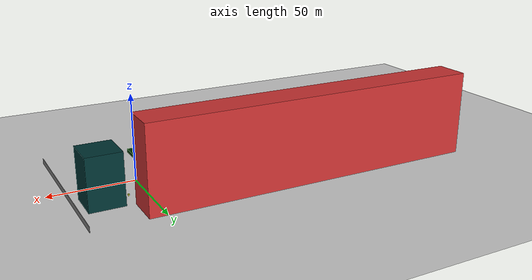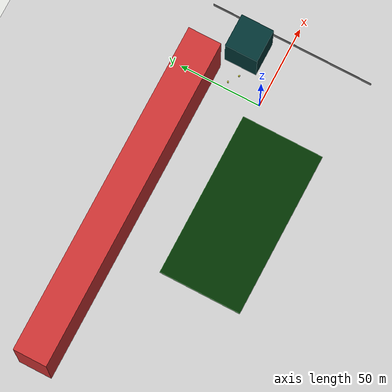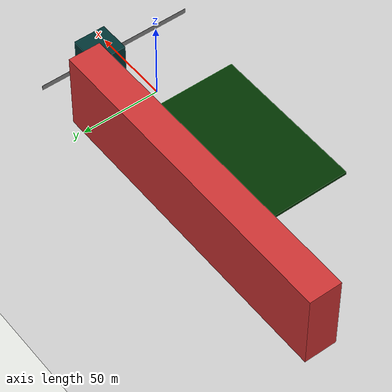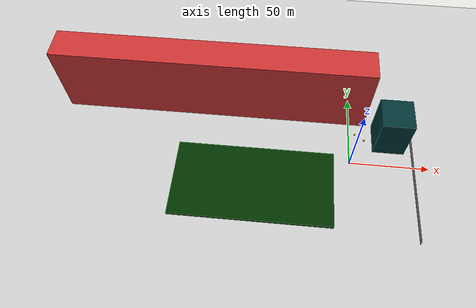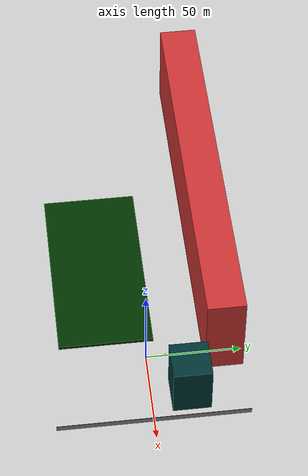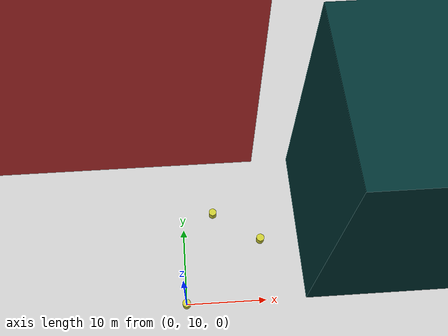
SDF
<sdf version="1.6">
 <world name="default">
  <spherical_coordinates>
   <surface_model>EARTH_WGS84</surface_model>
   <world_frame_orientation>ENU</world_frame_orientation>
   <latitude_deg>-12.069</latitude_deg>
   <longitude_deg>-77.0784</longitude_deg>
   <elevation>0</elevation>
   <heading_deg>0</heading_deg>
  </spherical_coordinates>
  <physics name="1ms" type="ignored">
   <max_step_size>0.01</max_step_size>
   <real_time_factor>1.0</real_time_factor>
  </physics>
  <plugin filename="ignition-gazebo-physics-system" name="gz::sim::systems::Physics"/>
  <plugin filename="ignition-gazebo-scene-broadcaster-system" name="gz::sim::systems::SceneBroadcaster"/>
  <plugin filename="ignition-gazebo-user-commands-system" name="ignition::gazebo::systems::UserCommands"/>
  <light name="sun" type="directional">
   <pose>0 0 10 0 -0 0</pose>
   <diffuse>0.8 0.8 0.8 1</diffuse>
   <specular>0.2 0.2 0.2 1</specular>
   <attenuation>
    <range>1000</range>
    <constant>0.9</constant>
    <linear>0.01</linear>
    <quadratic>0.001</quadratic>
   </attenuation>
   <direction>0.5 0.1 -0.9</direction>
  </light>
  <model name="ground_plane">
   <static>1</static>
   <link name="link">
    <collision name="collision">
     <geometry><plane><normal>0 0 1</normal><size>100 100</size></plane></geometry>
     <surface>
      <friction><ode><mu>100</mu><mu2>50</mu2></ode></friction>
      <contact><ode><kp>1e8</kp><kd>1</kd><min_depth>0.001</min_depth><max_vel>100</max_vel></ode></contact>
     </surface>
    </collision>
    <visual name="visual">
     <geometry><plane><normal>0 0 1</normal><size>100 100</size></plane></geometry>
     <material>
      <ambient>0.8 0.8 0.8 1</ambient>
      <diffuse>0.8 0.8 0.8 1</diffuse>
      <specular>0.8 0.8 0.8 1</specular>
     </material>
    </visual>
   </link>
  </model>
  <model name="box_obstacle_1">
   <static>1</static>
   <pose>25 20 15 0 0 0</pose>
   <link name="link">
    <inertial>
     <mass>1.0</mass>
     <inertia><ixx>0.1</ixx><ixy>0</ixy><ixz>0</ixz><iyy>0.1</iyy><iyz>0</iyz><izz>0.1</izz></inertia>
    </inertial>
    <collision name="collision"><geometry><box><size>20 20 30</size></box></geometry></collision>
    <visual name="visual">
     <geometry><box><size>20 20 30</size></box></geometry>
     <material>
      <ambient>0.0 0.2 0.2 1</ambient>
      <diffuse>0.0 0.2 0.2 1</diffuse>
      <specular>0.0 0.2 0.2 1</specular>
     </material>
    </visual>
   </link>
  </model>
  <model name="mcgregor">
   <static>1</static>
   <pose>-90 40 25 0 0 0</pose>
   <link name="link">
    <inertial>
     <mass>1.0</mass>
     <inertia><ixx>0.1</ixx><ixy>0</ixy><ixz>0</ixz><iyy>0.1</iyy><iyz>0</iyz><izz>0.1</izz></inertia>
    </inertial>
    <collision name="collision"><geometry><box><size>200 20 50</size></box></geometry></collision>
    <visual name="visual">
     <geometry><box><size>200 20 50</size></box></geometry>
     <material>
      <ambient>0.8 0.2 0.2 1</ambient>
      <diffuse>0.8 0.2 0.2 1</diffuse>
      <specular>0.8 0.2 0.2 1</specular>
     </material>
    </visual>
   </link>
  </model>
  <model name="grass">
   <static>1</static>
   <pose>-60 -20 1 0 0 0</pose>
   <link name="link">
    <inertial>
     <mass>1.0</mass>
     <inertia><ixx>0.1</ixx><ixy>0</ixy><ixz>0</ixz><iyy>0.1</iyy><iyz>0</iyz><izz>0.1</izz></inertia>
    </inertial>
    <collision name="collision"><geometry><box><size>100 50 2</size></box></geometry></collision>
    <visual name="visual">
     <geometry><box><size>100 50 2</size></box></geometry>
     <material>
      <ambient>0.0 0.2 0 1</ambient>
      <diffuse>0.0 0.2 0 1</diffuse>
      <specular>0.0 0.2 0 1</specular>
     </material>
    </visual>
   </link>
  </model>
  <model name="cylinder_obstacle_1">
   <static>1</static>
   <pose>0 10 0.5 0 0 0</pose>
   <link name="link">
    <inertial>
     <mass>1.0</mass>
     <inertia><ixx>0.1</ixx><ixy>0</ixy><ixz>0</ixz><iyy>0.1</iyy><iyz>0</iyz><izz>0.1</izz></inertia>
    </inertial>
    <collision name="collision">
     <geometry><cylinder><radius>2.5</radius><length>10.0</length></cylinder></geometry>
    </collision>
    <visual name="visual">
     <geometry><cylinder><radius>0.5</radius><length>1.0</length></cylinder></geometry>
     <material>
      <ambient>0.8 0.8 0.2 1</ambient>
      <diffuse>0.8 0.8 0.2 1</diffuse>
      <specular>0.8 0.8 0.2 1</specular>
     </material>
    </visual>
   </link>
  </model>
  <model name="cylinder_obstacle_2">
   <static>1</static>
   <pose>4 22 0.5 0 0 0</pose>
   <link name="link">
    <inertial>
     <mass>1.0</mass>
     <inertia><ixx>0.1</ixx><ixy>0</ixy><ixz>0</ixz><iyy>0.1</iyy><iyz>0</iyz><izz>0.1</izz></inertia>
    </inertial>
    <collision name="collision">
     <geometry><cylinder><radius>2.5</radius><length>10.0</length></cylinder></geometry>
    </collision>
    <visual name="visual">
     <geometry><cylinder><radius>0.5</radius><length>1.0</length></cylinder></geometry>
     <material>
      <ambient>0.8 0.8 0.2 1</ambient>
      <diffuse>0.8 0.8 0.2 1</diffuse>
      <specular>0.8 0.8 0.2 1</specular>
     </material>
    </visual>
   </link>
  </model>
  <model name="cylinder_obstacle_3">
   <static>1</static>
   <pose>10 18 0.5 0 0 0</pose>
   <link name="link">
    <inertial>
     <mass>1.0</mass>
     <inertia><ixx>0.1</ixx><ixy>0</ixy><ixz>0</ixz><iyy>0.1</iyy><iyz>0</iyz><izz>0.1</izz></inertia>
    </inertial>
    <collision name="collision">
     <geometry><cylinder><radius>2.5</radius><length>10.0</length></cylinder></geometry>
    </collision>
    <visual name="visual">
     <geometry><cylinder><radius>0.5</radius><length>1.0</length></cylinder></geometry>
     <material>
      <ambient>0.8 0.8 0.2 1</ambient>
      <diffuse>0.8 0.8 0.2 1</diffuse>
      <specular>0.8 0.8 0.2 1</specular>
     </material>
    </visual>
   </link>
  </model>
  <model name="entrada_wall">
   <static>1</static>
   <pose>40 0 0.5 0 0 0</pose>
   <link name="link">
    <inertial>
     <mass>1.0</mass>
     <inertia><ixx>0.1</ixx><ixy>0</ixy><ixz>0</ixz><iyy>0.1</iyy><iyz>0</iyz><izz>0.1</izz></inertia>
    </inertial>
    <collision name="collision"><geometry><box><size>0.2 100 5</size></box></geometry></collision>
    <visual name="visual">
     <geometry><box><size>0.2 100 5</size></box></geometry>
     <material>
      <ambient>0.5 0.5 0.5 1</ambient>
      <diffuse>0.5 0.5 0.5 1</diffuse>
      <specular>0.5 0.5 0.5 1</specular>
     </material>
    </visual>
   </link>
  </model>
  <scene><ambient>0.4 0.4 0.4 1</ambient><background>0.7 0.7 0.7 1</background><shadows>1</shadows></scene>
 </world>
</sdf>
